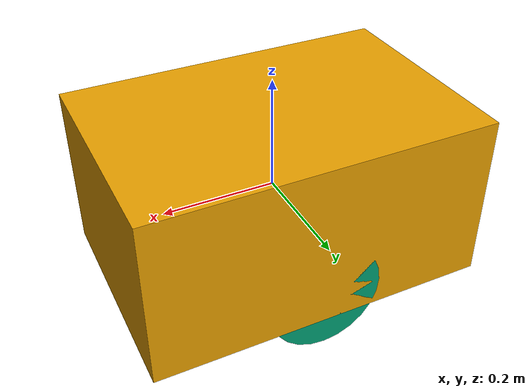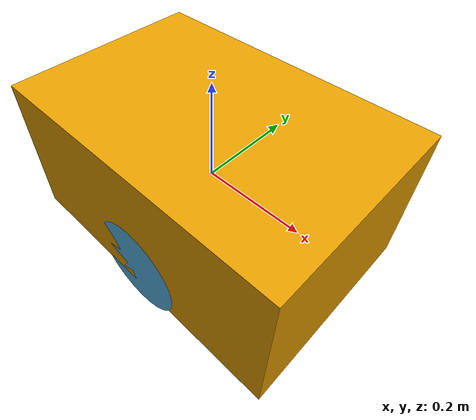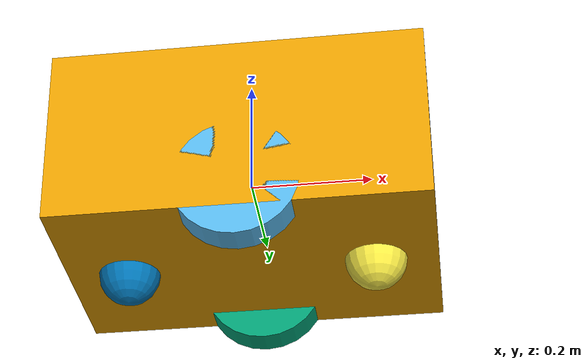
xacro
<?xml version="1.0"?>

<robot name="egitim_robotu" xmlns:xacro="http://ros.org/wiki/xacro">
  <xacro:include filename="$(find egitim_robotu_description)/urdf/egitim_robotu_taban.xacro"/>
  <xacro:include filename="$(find egitim_robotu_description)/urdf/egitim_robotu_inertia.xacro"/>
  <xacro:include filename="$(find egitim_robotu_description)/urdf/egitim_robotu_tekerlek.xacro"/>
  <xacro:include filename="$(find egitim_robotu_description)/urdf/egitim_robotu_diferansiyel.xacro"/>
  <xacro:include filename="$(find egitim_robotu_description)/urdf/egitim_robotu_laser.xacro"/>
  <xacro:include filename="$(find egitim_robotu_description)/urdf/egitim_robotu_kamera.xacro"/>

  <xacro:egitim_robotu_taban />
  <xacro:egitim_robotu_tekerlek xyz_konum="0.0 -0.175 -0.1" rpy_konum="0 0 0" yon="left"/>
  <xacro:egitim_robotu_tekerlek xyz_konum="0.0 0.175 -0.1" rpy_konum="0 0 0" yon="right"/>
  <xacro:egitim_robotu_sarhos_tekerlek xyz_konum="0.2 0.0 -0.15" rpy_konum="0 0 0" yon="front"/>
  <xacro:egitim_robotu_sarhos_tekerlek xyz_konum="-0.2 0.0 -0.15" rpy_konum="0 0 0" yon="back"/>
  <xacro:egitim_robotu_diferansiyel />
  <xacro:egitim_robotu_lazer />
  <xacro:egitim_robotu_kamera />

</robot>

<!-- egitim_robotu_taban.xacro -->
<robot xmlns:xacro="http://ros.org/wiki/xacro">
  <xacro:macro name="egitim_robotu_taban">
    <link name="base_footprint">
      <collision>
        <origin xyz="0 0 0" rpy="0 0 0"/>
        <geometry>
         <box size="0.6 0.4 0.3"/>
        </geometry>
      </collision>
      <visual>
        <origin xyz="0 0 0" rpy="0 0 0"/>
        <geometry>
         <box size="0.6 0.4 0.3"/>
        </geometry>
      </visual>
      <xacro:box_inertial x="0.6" y="0.4" z="0.3" mass="10.0"/>
    </link>
    <gazebo reference="base_footprint">
     <material value="Gazebo/Red"/>
    </gazebo>
  </xacro:macro>
</robot>

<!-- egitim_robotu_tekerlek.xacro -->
<robot xmlns:xacro="http://ros.org/wiki/xacro">
  <xacro:macro name="egitim_robotu_tekerlek" params="xyz_konum rpy_konum yon">
  <link name="wheel_${yon}_link">
    <collision>
       <origin xyz="0 0 0" rpy="0 1.570796 1.570796"/>
       <geometry>
         <cylinder radius="0.10" length="0.05"/>
       </geometry>
    </collision>
    <visual>
       <origin xyz="0 0 0" rpy="0 1.570796 1.570796"/>
       <geometry>
         <cylinder radius="0.10" length="0.05"/>
       </geometry>
    </visual>
    <xacro:cylinder_inertial radius="0.1" length="0.05" mass="0.5"/>
  </link>

  <joint name="wheel_${yon}_base" type="continuous">
    <origin xyz="${xyz_konum}" rpy="${rpy_konum}"/>
    <parent link="base_footprint"/>
    <child link="wheel_${yon}_link"/>
    <axis xyz="0 1 0"/>
  </joint>

  <gazebo reference="wheel_${yon}_link">
    <material value="Gazebo/Black"/>
  </gazebo>

  </xacro:macro>

  <xacro:macro name="egitim_robotu_sarhos_tekerlek" params="xyz_konum rpy_konum yon">
  <link name="caster_wheel_${yon}_link">
    <collision>
       <origin xyz="0 0 0" rpy="0 0 0"/>
       <geometry>
         <sphere radius="0.05"/>
       </geometry>
    </collision>
    <visual>
       <origin xyz="0 0 0" rpy="0 0 0"/>
       <geometry>
         <sphere radius="0.05"/>
       </geometry>
    </visual>
    <xacro:sphere_inertial radius="0.05" mass="0.05"/>
  </link>

  <joint name="caster_wheel_${yon}_base" type="continuous">
    <origin xyz="${xyz_konum}" rpy="${rpy_konum}"/>
    <parent link="base_footprint"/>
    <child link="caster_wheel_${yon}_link"/>
    <axis xyz="1 1 1"/>
  </joint>

  <gazebo reference="caster_wheel_${yon}_link">
    <material value="Gazebo/White"/>
  </gazebo>

  </xacro:macro>

</robot>

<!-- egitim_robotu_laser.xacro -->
<robot xmlns:xacro="http://ros.org/wiki/xacro">
  <xacro:macro name="egitim_robotu_lazer">
     <link name="laser_link">
       <collision>
         <origin xyz="0 0 0" rpy="0 0 0"/>
         <geometry>
            <cylinder radius="0.025" length="0.025"/>
         </geometry>
       </collision>
       <visual>
         <origin xyz="0 0 0" rpy="0 0 0"/>
         <geometry>
            <cylinder radius="0.025" length="0.025"/>
         </geometry>
       </visual>
       <xacro:cylinder_inertial radius="0.025" length="0.025" mass="0.2"/>
    </link>
    <joint name="base_to_laser" type="fixed">
      <origin xyz="0.0 0.0 0.1125" rpy="0 0 0"/>
      <parent link="base_footprint"/>
      <child link="laser_link"/>
    </joint>
   <gazebo reference="laser_link">
    <material value="Gazebo/Green"/>
    <sensor type="gpu_ray" name="head_hokuyo_sensor">
      <pose>0 0 0 0 0 0</pose>
      <visualize>false</visualize>
      <update_rate>40</update_rate>
      <ray>
        <scan>
          <horizontal>
            <samples>720</samples>
            <resolution>1</resolution>
            <min_angle>-3.1415</min_angle>
            <max_angle>3.1415</max_angle>
          </horizontal>
        </scan>
        <range>
          <min>0.10</min>
          <max>10.0</max>
          <resolution>0.01</resolution>
        </range>
        <noise>
          <type>gaussian</type>
          <mean>0.0</mean>
          <stddev>0.01</stddev>
        </noise>
      </ray>
      <plugin name="gazebo_ros_head_hokuyo_controller" filename="libgazebo_ros_gpu_laser.so">
        <topicName>scan</topicName>
        <frameName>laser_link</frameName>
      </plugin>
    </sensor>
  </gazebo>
  </xacro:macro>
</robot>

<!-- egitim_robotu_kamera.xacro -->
<robot xmlns:xacro="http://ros.org/wiki/xacro">
  <xacro:macro name="egitim_robotu_kamera">
     <link name="camera_link">
       <collision>
         <origin xyz="0 0 0" rpy="0 0 0"/>
         <geometry>
            <box size="0.025 0.1 0.025"/>
         </geometry>
       </collision>
       <visual>
         <origin xyz="0 0 0" rpy="0 0 0"/>
         <geometry>
            <box size="0.025 0.1 0.025"/>
         </geometry>
       </visual>
       <xacro:box_inertial x="0.025" y="0.1" z="0.025" mass="0.1"/>
    </link>
    <joint name="base_to_camera" type="fixed">
      <origin xyz="0.25 0 0" rpy="0 0 0"/>
      <parent link="base_footprint"/>
      <child link="camera_link"/>
    </joint>

	<gazebo reference="camera_link">
	  <material value="Gazebo/Blue"/>
	  <sensor name="camera_link_camera" type="depth">
	    <update_rate>20</update_rate>
	    <camera>
	      <horizontal_fov>1.047198</horizontal_fov>
	      <image>
		<width>640</width>
		<height>480</height>
		<format>R8G8B8</format>
	      </image>
	      <clip>
		<near>0.05</near>
		<far>3</far>
	      </clip>
	    </camera>
	    <plugin name="camera_link_controller" filename="libgazebo_ros_openni_kinect.so">
	      <baseline>0.2</baseline>
	      <alwaysOn>true</alwaysOn>
	      <updateRate>1.0</updateRate>
	      <cameraName></cameraName>
	      <imageTopicName>/camera/rgb/image_raw</imageTopicName>
	      <cameraInfoTopicName>/camera/rgb/camera_info</cameraInfoTopicName>
	      <depthImageTopicName>/camera/depth/image_raw</depthImageTopicName>
	      <depthImageInfoTopicName>/camera/depth/camera_info</depthImageInfoTopicName>
	      <pointCloudTopicName>/camera/depth/points</pointCloudTopicName>
	      <frameName>camera_link</frameName>
	      <pointCloudCutoff>0.5</pointCloudCutoff>
	      <pointCloudCutoffMax>3.0</pointCloudCutoffMax>
	      <distortionK1>0.00000001</distortionK1>
	      <distortionK2>0.00000001</distortionK2>
	      <distortionK3>0.00000001</distortionK3>
	      <distortionT1>0.00000001</distortionT1>
	      <distortionT2>0.00000001</distortionT2>
	      <CxPrime>0</CxPrime>
	      <Cx>0</Cx>
	      <Cy>0</Cy>
	      <focalLength>0</focalLength>
	      <hackBaseline>0</hackBaseline>
	    </plugin>
	  </sensor>
	</gazebo>

  </xacro:macro>
</robot>
